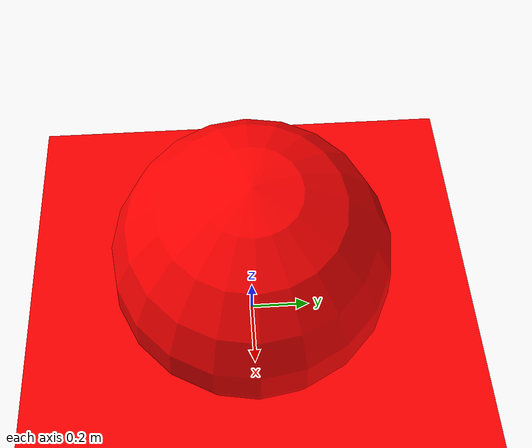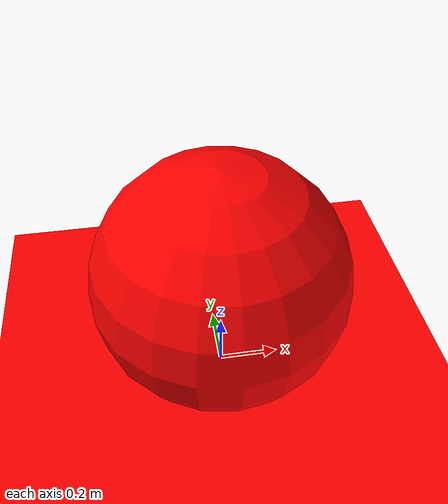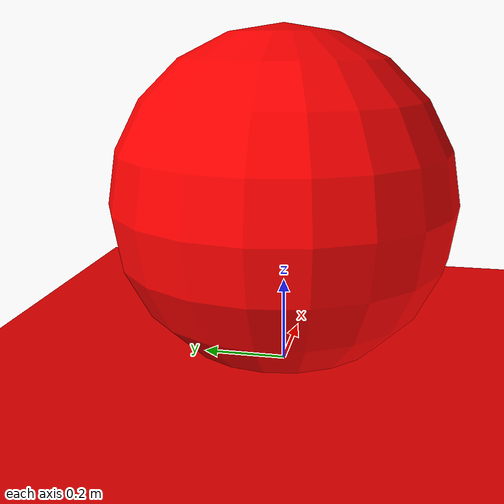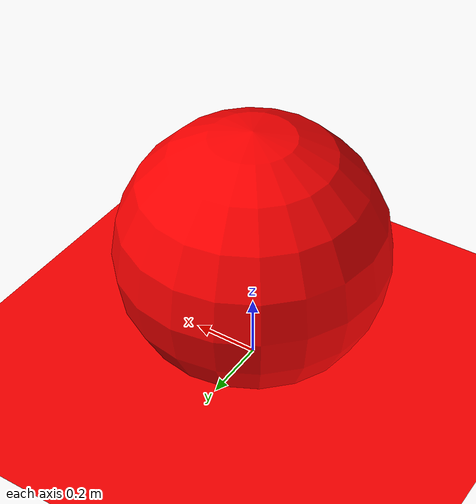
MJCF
<mujoco>
    <size njmax="3000" nconmax="1000"/>
    <option timestep="0.002"/>
    <default>
        <geom condim="1" density="1." rgba="1 0 0 1" solimp="1.0 1.0 0.001 0.1 1" solref="-100.0 -1000.0" friction="0.0 0.0 0.0"/>
        <joint damping=".00"/>
        <motor ctrlrange="-300 300" ctrllimited="false" forcerange="-300. 300." forcelimited="false"/>
        <site size="0.032" type="sphere"/>
    </default>
    <worldbody>
        <geom name="floor" size="5 5 0.1" type="plane" condim="1"/>
        <body name="robot" pos="0 0 .4">
            <camera name="vision" pos="0 0 .15" xyaxes="0 -1 0 .4 0 1" fovy="90"/>
            <joint type="slide" axis="1 0 0" name="x" damping="0.0"/>
            <joint type="slide" axis="0 1 0" name="y" damping="0.0"/>
            <geom name="robot" type="sphere" size=".4" mass="0.12"/>
            <site name="robot" rgba="1 0 0 .1"/>
        </body>
    </worldbody>
    <sensor>
        <!-- Used for observation -->
        <accelerometer site="robot" name="accelerometer"/>
        <velocimeter site="robot" name="velocimeter"/>

        <!-- Used for intrinsic constraints -->
        <subtreecom body="robot" name="subtreecom"/>
        <subtreelinvel body="robot" name="subtreelinvel"/>
        <subtreeangmom body="robot" name="subtreeangmom"/>
    </sensor>
    <actuator>
        <motor gear="1.5 0 0 0 0 0" site="robot" name="x"/>
        <motor gear="0 1.5 0 0 0 0" site="robot" name="y"/>
    </actuator>
</mujoco>
